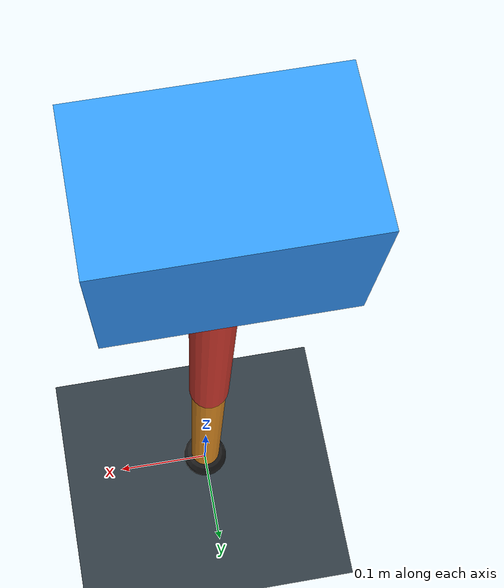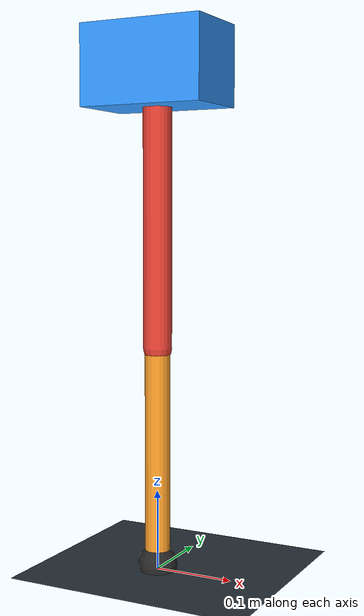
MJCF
<mujoco model="single_axis_two_bar">
  <compiler angle="radian" inertiafromgeom="true"/>
  <option timestep="0.001" integrator="implicitfast" gravity="0 0 -9.81"/>
  <default>
    <joint damping="0.08"/>
    <geom friction="1.2 0.01 0.0001" condim="3"/>
  </default>
  <worldbody>
    <geom name="floor" type="plane" size="5 5 0.1" rgba="0.18 0.22 0.25 1"/>
    <body name="carriage" pos="0 0 0.6268575315608452">
      <joint name="pole_slide" type="slide" axis="0 0 1"/>
      <geom name="payload" type="box" size="0.08 0.05 0.05" mass="2.872151546656119" rgba="0.2 0.6 1 1"/>
      <body name="thigh" pos="0 0 0">
        <joint name="hip" type="hinge" axis="0 1 0"/>
        <geom name="thigh_link" type="capsule" fromto="0 0 0 0 0 -0.3457634365178113" size="0.018" mass="0.246361017379651" rgba="0.9 0.25 0.2 1"/>
        <body name="shank" pos="0 0 -0.3457634365178113">
          <joint name="knee" type="hinge" axis="0 1 0"/>
          <geom name="shank_link" type="capsule" fromto="0 0 0 0 0 -0.27470824550367867" size="0.016" mass="0.19573325487057092" rgba="0.95 0.6 0.15 1"/>
          <geom name="foot" type="sphere" pos="0 0 -0.27470824550367867" size="0.025" mass="0.03" rgba="0.15 0.15 0.15 1"/>
          <site name="toe" pos="0 0 -0.27470824550367867" size="0.008"/>
        </body>
      </body>
    </body>
  </worldbody>
  <actuator>
    <motor name="hip_motor" joint="hip" ctrlrange="-29.19666836308236 29.19666836308236"/>
    <motor name="knee_motor" joint="knee" ctrlrange="-104.16073848639363 104.16073848639363"/>
  </actuator>
</mujoco>
